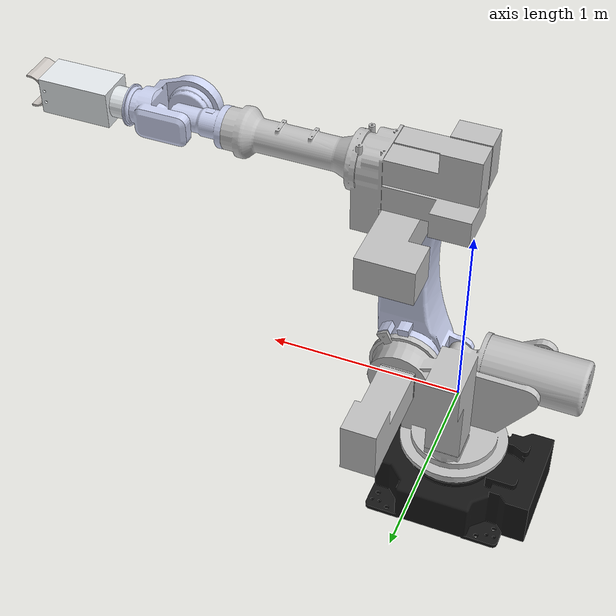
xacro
<?xml version="1.0"?>
<robot xmlns:xacro="http://www.ros.org/wiki/xacro" name="rb210">
    <xacro:arg name="initial_positions_file" default="$(find rb210_moveit_config)/config/initial_positions.yaml" />

    <!-- Import rb210 urdf file -->
    <xacro:include filename="$(find rb210_description)/urdf/rb210.urdf.xacro" />

    <!-- Import control_xacro -->
    <xacro:include filename="$(find rb210_moveit_config)/config/rb210.ros2_control.xacro" />

    <xacro:rb210_ros2_control name="FakeSystem" initial_positions_file="$(arg initial_positions_file)"/>

</robot>

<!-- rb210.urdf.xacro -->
<robot name="rb210" xmlns:xacro="http://www.ros.org/wiki/xacro">
  <xacro:property name="M_PI" value="3.1415926" />
  <link
    name="arm_base_link">
    <inertial>
      <origin
        xyz="-0.0662236093520057 0.000169423632394699 -0.559915527453755"
        rpy="0 0 0" />
      <mass
        value="109.96106546945" />
      <inertia
        ixx="3.85623338800608"
        ixy="0.00326528537974634"
        ixz="0.122324437258308"
        iyy="6.30766859229032"
        iyz="-0.00250048976433973"
        izz="9.12103991339109" />
    </inertial>
    <visual>
      <origin
        xyz="0 0 0"
        rpy="0 0 0" />
      <geometry>
        <mesh
          filename="file://$(find rb210_description)/meshes/arm_base_link.STL" />
      </geometry>
      <material
        name="">
        <color
          rgba="0.0823529411764706 0.0823529411764706 0.0823529411764706 1" />
      </material>
    </visual>
    <collision>
      <origin
        xyz="0 0 0"
        rpy="0 0 0" />
      <geometry>
        <mesh
          filename="file://$(find rb210_description)/collision/arm_base_link.STL" />
      </geometry>
    </collision>
  </link>
  <link name = "arm_floor"/>
  <joint name="virtual_floor_to_arm"  type="fixed">
    <origin
      xyz="0 0 -0.686"
      rpy="0 0 0" />
    <parent link="arm_base_link"/>
    <child link="arm_floor"/>
    <axis
      xyz="0 0 0" />
  </joint>

  <link
    name="link1">
    <inertial>
      <origin
        xyz="-0.00304521726975492 -0.0196819560054199 -0.0773246870160772"
        rpy="0 0 0" />
      <mass
        value="140.866694840593" />
      <inertia
        ixx="4.80402617224302"
        ixy="-0.423235122370072"
        ixz="-0.698377952156826"
        iyy="5.68999173759069"
        iyz="0.0765330264898455"
        izz="5.56463196707449" />
    </inertial>
    <visual>
      <origin
        xyz="0 0 0"
        rpy="0 0 0" />
      <geometry>
        <mesh
          filename="file://$(find rb210_description)/meshes/link1.STL" />
      </geometry>
      <material
        name="">
        <color
          rgba="0.752941176470588 0.752941176470588 0.752941176470588 1" />
      </material>
    </visual>
    <collision>
      <origin
        xyz="0 0 0"
        rpy="0 0 0" />
      <geometry>
        <mesh
          filename="file://$(find rb210_description)/collision/link1.STL" />
      </geometry>
    </collision>
  </link>
  <joint
    name="joint1"
    type="revolute">
    <origin
      xyz="0 0 0"
      rpy="0 0 0" />
    <parent
      link="arm_base_link" />
    <child
      link="link1" />
    <axis
      xyz="0 0 1" />
    <limit effort="100" lower="-3.054326139" upper="3.054326139" velocity="1.75"/>
  </joint>
  <link
    name="link2">
    <inertial>
      <origin
        xyz="0.032470290496306 -0.411791214488961 -0.270509966594144"
        rpy="0 0 0" />
      <mass
        value="73.9318939359821" />
      <inertia
        ixx="10.031480952711"
        ixy="0.297080343679361"
        ixz="0.0264748959369714"
        iyy="0.918149975123558"
        iyz="-0.608795170680874"
        izz="10.2404744757894" />
    </inertial>
    <visual>
      <origin
        xyz="0 0 0"
        rpy="0 0 0" />
      <geometry>
        <mesh
          filename="file://$(find rb210_description)/meshes/link2.STL" />
      </geometry>
      <material
        name="">
        <color
          rgba="0.792156862745098 0.819607843137255 0.933333333333333 1" />
      </material>
    </visual>
    <collision>
      <origin
        xyz="0 0 0"
        rpy="0 0 0" />
      <geometry>
        <mesh
          filename="file://$(find rb210_description)/collision/link2.STL" />
      </geometry>
    </collision>
  </link>
  <joint
    name="joint2"
    type="revolute">
    <origin
      xyz="0.31 0 0"
      rpy="-1.5708 0 0" />
    <parent
      link="link1" />
    <child
      link="link2" />
    <axis
      xyz="0 0 1" />
    <limit effort="100" lower="-1.047197533" upper="1.308996917" velocity="1.64"/>
  </joint>
  <link
    name="link3">
    <inertial>
      <origin
        xyz="0.152866357522633 0.0739560287484395 0.042051035184931"
        rpy="0 0 0" />
      <mass
        value="95.7037629558501" />
      <inertia
        ixx="2.54020386059425"
        ixy="-0.0912438621682568"
        ixz="-0.118266407367538"
        iyy="1.62294203334289"
        iyz="-0.0553540171625532"
        izz="2.25252397972877" />
    </inertial>
    <visual>
      <origin
        xyz="0 0 0"
        rpy="0 0 0" />
      <geometry>
        <mesh
          filename="file://$(find rb210_description)/meshes/link3.STL" />
      </geometry>
      <material
        name="">
        <color
          rgba="0.752941176470588 0.752941176470588 0.752941176470588 1" />
      </material>
    </visual>
    <collision>
      <origin
        xyz="0 0 0"
        rpy="0 0 0" />
      <geometry>
        <mesh
          filename="file://$(find rb210_description)/collision/link3.STL" />
      </geometry>
    </collision>
  </link>
  <joint
    name="joint3"
    type="revolute">
    <origin
      xyz="0 -1.05 0"
      rpy="0 0 -1.5708" />
    <parent
      link="link2" />
    <child
      link="link3" />
    <axis
      xyz="0 0 1" />
    <limit effort="100" lower="-3.228859061" upper="1.396263378" velocity="1.82"/>
  </joint>
  <link
    name="link4">
    <inertial>
      <origin
        xyz="-0.000243295656135345 0.0193656409151708 1.03196355006935"
        rpy="0 0 0" />
      <mass
        value="5.77015524318288" />
      <inertia
        ixx="0.0627409130890417"
        ixy="-5.48760968557691E-09"
        ixz="1.15631230667801E-08"
        iyy="0.0623932753397127"
        iyz="-0.00944351305228434"
        izz="0.0224066960595678" />
    </inertial>
    <visual>
      <origin
        xyz="0 0 0"
        rpy="0 0 0" />
      <geometry>
        <mesh
          filename="file://$(find rb210_description)/meshes/link4.STL" />
      </geometry>
      <material
        name="">
        <color
          rgba="0.792156862745098 0.819607843137255 0.933333333333333 1" />
      </material>
    </visual>
    <collision>
      <origin
        xyz="0 0 0"
        rpy="0 0 0" />
      <geometry>
        <mesh
          filename="file://$(find rb210_description)/collision/link4.STL" />
      </geometry>
    </collision>
  </link>
  <joint
    name="joint4"
    type="revolute">
    <origin
      xyz="0.23824 0 0"
      rpy="-1.5708 0 0" />
    <parent
      link="link3" />
    <child
      link="link4" />
    <axis
      xyz="0 0 1" />
    <limit effort="100" lower="-3.14" upper="3.14" velocity="2.88"/>
  </joint>
  <link
    name="link5">
    <inertial>
      <origin
        xyz="1.37351796603014E-09 0.0809004715764616 -0.02286543277086"
        rpy="0 0 0" />
      <mass
        value="9.73084921237884" />
      <inertia
        ixx="0.171374008546094"
        ixy="1.10978691926823E-10"
        ixz="8.07815959365067E-09"
        iyy="0.113523214398149"
        iyz="-0.0259886718854678"
        izz="0.119194596154765" />
    </inertial>
    <visual>
      <origin
        xyz="0 0 0"
        rpy="0 0 0" />
      <geometry>
        <mesh
          filename="file://$(find rb210_description)/meshes/link5.STL" />
      </geometry>
      <material
        name="">
        <color
          rgba="0.792156862745098 0.819607843137255 0.933333333333333 1" />
      </material>
    </visual>
    <collision>
      <origin
        xyz="0 0 0"
        rpy="0 0 0" />
      <geometry>
        <mesh
          filename="file://$(find rb210_description)/collision/link5.STL" />
      </geometry>
    </collision>
  </link>
  <joint
    name="joint5"
    type="revolute">
    <origin
      xyz="0 0 1.114"
      rpy="1.5708 0 0" />
    <parent
      link="link4" />
    <child
      link="link5" />
    <axis
      xyz="0 0 1" />
    <limit effort="100" lower="-2.007128606" upper="2.007128606" velocity="3.04"/>
  </joint>
  <link
    name="link6">
    <inertial>
      <origin
        xyz="0.000139624060748744 -0.0040000000000149 -0.0131314872675798"
        rpy="0 0 0" />
      <mass
        value="0.49507262853455" />
      <inertia
        ixx="0.00131365926135811"
        ixy="-3.1587314040373E-17"
        ixz="-5.25894432952754E-07"
        iyy="0.00130811968591649"
        iyz="-5.98029512887128E-18"
        izz="0.00256515483487634" />
    </inertial>
    <visual>
      <origin
        xyz="0 0 0"
        rpy="0 0 0" />
      <geometry>
        <mesh
          filename="file://$(find rb210_description)/meshes/link6.STL" />
      </geometry>
      <material
        name="">
        <color
          rgba="0.792156862745098 0.819607843137255 0.933333333333333 1" />
      </material>
    </visual>
    <collision>
      <origin
        xyz="0 0 0"
        rpy="0 0 0" />
      <geometry>
        <mesh
          filename="file://$(find rb210_description)/collision/link6.STL" />
      </geometry>
    </collision>
  </link>
  <joint
    name="joint6"
    type="revolute">
    <origin
      xyz="0 0.2675 0"
      rpy="-1.5708 0 0" />
    <parent
      link="link5" />
    <child
      link="link6" />
    <axis
      xyz="0 0 1" />
    <limit effort="100" lower="-3.14" upper="3.14" velocity="4.15"/>
  </joint>
  <link
    name="hand">
    <inertial>
      <origin
        xyz="-2.22044604925031E-16 -0.318320848320949 0.00400000000001465"
        rpy="0 0 0" />
      <mass
        value="4.15664811064483" />
      <inertia
        ixx="0.0866425132828938"
        ixy="5.62499499320595E-17"
        ixz="-2.34323723924022E-17"
        iyy="0.0305264859774803"
        iyz="-2.53646723982048E-16"
        izz="0.0855335565867891" />
    </inertial>
    <visual>
      <origin
        xyz="0 0 0"
        rpy="0 0 0" />
      <geometry>
        <mesh
          filename="file://$(find rb210_description)/meshes/hand.STL" />
      </geometry>
      <material
        name="">
        <color
          rgba="0.898039215686275 0.917647058823529 0.929411764705882 1" />
      </material>
    </visual>
    <collision>
      <origin
        xyz="0 0 0"
        rpy="0 0 0" />
      <geometry>
        <mesh
          filename="file://$(find rb210_description)/collision/hand.STL" />
      </geometry>
    </collision>
  </link>
  <joint
    name="hand_fixed"
    type="fixed">
    <origin
      xyz="0 0 0.49"
      rpy="1.5708 0 0" />
    <parent
      link="link6" />
    <child
      link="hand" />
    <axis
      xyz="0 0 0" />
  </joint>
  <link
    name="finger1">
    <inertial>
      <origin
        xyz="-0.0216261499375139 0.0175638027523719 0.00106433906973295"
        rpy="0 0 0" />
      <mass
        value="0.407012964609873" />
      <inertia
        ixx="0.00105421041323117"
        ixy="0.000209391528189132"
        ixz="-7.64688634281681E-07"
        iyy="0.00122260710514353"
        iyz="3.00261715240002E-07"
        izz="0.000538771524779678" />
    </inertial>
    <visual>
      <origin
        xyz="0 0 0"
        rpy="0 0 0" />
      <geometry>
        <mesh
          filename="file://$(find rb210_description)/meshes/finger1.STL" />
      </geometry>
      <material
        name="">
        <color
          rgba="0.780392156862745 0.76078431372549 0.741176470588235 1" />
      </material>
    </visual>
    <collision>
      <origin
        xyz="0 0 0"
        rpy="0 0 0" />
      <geometry>
        <mesh
          filename="file://$(find rb210_description)/collision/finger1.STL" />
      </geometry>
    </collision>
  </link>
  <joint
    name="finger1_joint"
    type="fixed">
    <origin
      xyz="-0.03 -0.079048 0"
      rpy="3.1416 0 -1.5708" />
    <parent
      link="hand" />
    <child
      link="finger1" />
    <axis
      xyz="0 0 0" />
  </joint>
  <link
    name="finger2">
    <inertial>
      <origin
        xyz="-0.0216241390931202 -0.0175630008983085 -0.00143213476753591"
        rpy="0 0 0" />
      <mass
        value="0.419760885855558" />
      <inertia
        ixx="0.00114402786446323"
        ixy="-0.000215946409173716"
        ixz="-8.31176273877102E-07"
        iyy="0.00131770519424895"
        iyz="-3.26787031443601E-07"
        izz="0.000555641336811229" />
    </inertial>
    <visual>
      <origin
        xyz="0 0 0"
        rpy="0 0 0" />
      <geometry>
        <mesh
          filename="file://$(find rb210_description)/meshes/finger2.STL" />
      </geometry>
      <material
        name="">
        <color
          rgba="0.780392156862745 0.76078431372549 0.741176470588235 1" />
      </material>
    </visual>
    <collision>
      <origin
        xyz="0 0 0"
        rpy="0 0 0" />
      <geometry>
        <mesh
          filename="file://$(find rb210_description)/collision/finger2.STL" />
      </geometry>
    </collision>
  </link>
  <joint
    name="finger2_joint"
    type="fixed">
    <origin
      xyz="0.03 -0.079048 0"
      rpy="3.1416 0 -1.5708" />
    <parent
      link="hand" />
    <child
      link="finger2" />
    <axis
      xyz="0 0 0" />
  </joint>
</robot>
